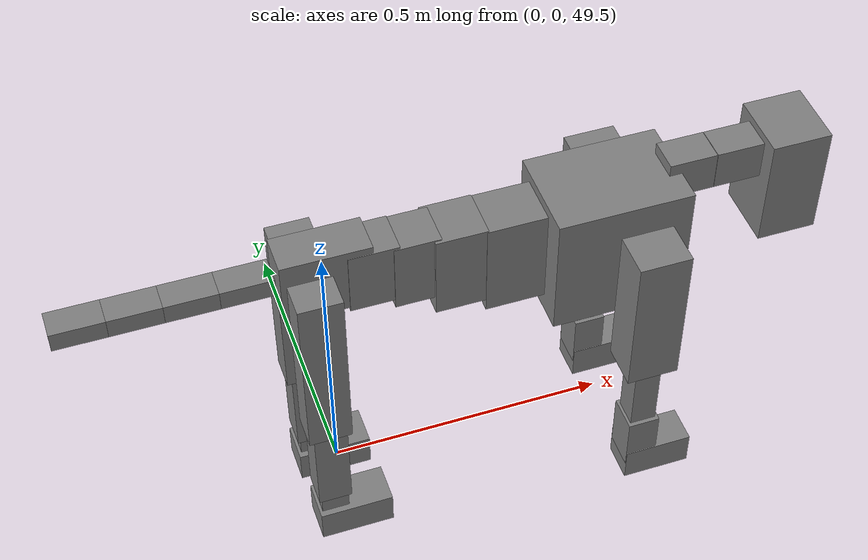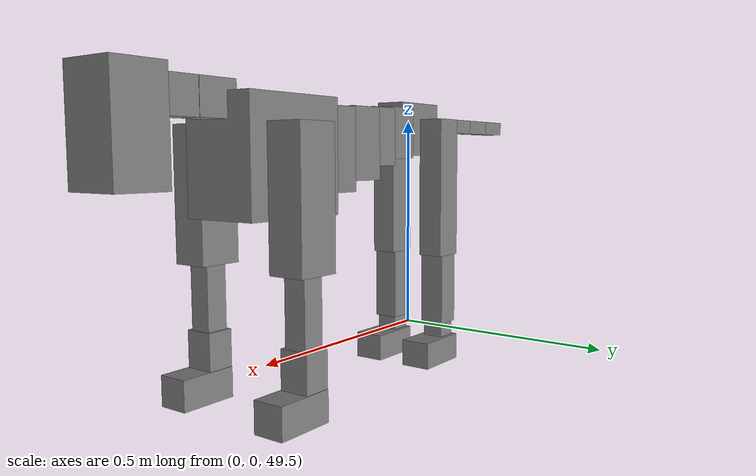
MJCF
<mujoco model="dog">

    <default>
        <joint armature="0.02" stiffness="1" damping="0.2" limited="true"/>
        <geom condim="3" friction="1 0.05 0.05" margin="0.01"/>
        <motor ctrllimited="true" ctrlrange="-1.0 1.0" forcelimited="true" gear="50"/>
    </default>

    <compiler inertiafromgeom="true" angle="radian"/>

    <option timestep="0.016" iterations="50" tolerance="1e-10" solver="Newton" jacobian="dense" cone="pyramidal"/>

    <size nconmax="20000" njmax="60000" nstack="5000000"/>
    <visual>
        <map force="0.1" zfar="30"/>
        <rgba haze="0.15 0.25 0.35 1"/>
        <quality shadowsize="2048"/>
        <global offwidth="800" offheight="800"/>
    </visual>

    <asset>
        <texture type="skybox" builtin="gradient" rgb1="0.3 0.5 0.7" rgb2="0 0 0" width="512" height="512"/>
        <texture name="texplane" type="2d" builtin="checker" rgb1=".2 .3 .4" rgb2=".1 0.15 0.2" width="512" height="512"
                 mark="cross" markrgb=".8 .8 .8"/>
        <texture name="texgeom" type="cube" builtin="flat" mark="cross" width="127" height="1278" rgb1="0.8 0.6 0.4"
                 rgb2="0.8 0.6 0.4" markrgb="1 1 1" random="0.01"/>

        <material name="matplane" reflectance="0.3" texture="texplane" texrepeat="1 1" texuniform="true"/>
        <material name="matgeom" texture="texgeom" texuniform="true" rgba="0.8 0.6 .4 1"/>
    </asset>

    <worldbody>
        <geom name="floor" pos="0 0 0" size="0 0 .25" type="plane" material="matplane" condim="3"/>

        <light directional="false" diffuse=".2 .2 .2" specular="0 0 0" pos="0 0 5" dir="0 0 -1" castshadow="false"/>
        <light mode="targetbodycom" target="torso" directional="false" diffuse=".8 .8 .8" specular="0.3 0.3 0.3"
               pos="0 0 4.0" dir="0 0 -1"/>

        <body name="root" pos="0 0 50">
            <freejoint name="root_1"/>
            <geom type="box" pos="0 0 -0.02" size="0.0774  0.0358  0.063" density="2030"/>

            <body name="spine1" pos="0.054 0 0">
                <joint name="spine1_y" axis="0 1 0" range="0 0.7" limited="true"/>
                <geom type="box" pos="0.02375 0 -0.03" size="0.04375  0.0375  0.05985" density="2030"/>

                <body name="spine2" pos="0.0612 0 0">
                    <joint name="spine2_y" axis="0 1 0" range="-0.15 0.15" limited="true"/>
                    <geom type="box" pos="0.03555  0  -0.04" size="0.04055  0.039  0.06615" density="2030"/>

                    <body name="spine3" pos="0.0730 0 0">
                        <joint name="spine3_y" axis="0 1 0" range="-0.15 0.15" limited="true"/>
                        <geom type="box" pos="0.03555  0  -0.057" size="0.04555  0.0445  0.081" density="2030"/>

                        <body name="spine4" pos="0.0780 0 0">
                            <joint name="spine4_y" axis="0 1 0" range="-0.15 0.15" limited="true"/>
                            <geom type="box" pos="0.05265  0  -0.07" size="0.05265  0.045  0.09135" density="2030"/>

                            <body name="torso" pos="0.1082 0 0">
                                <joint name="torso_y" axis="0 1 0" range="-0.15 0.15" limited="true"/>
                                <geom type="box" pos="0.11925  0  -0.085" size="0.11925  0.085  0.11745"
                                      density="2030"/>

                                <body name="neck1" pos="0.2160  0   0.0180">
                                    <joint name="neck1_y" axis="0 1 0" range="-1.2  -1" limited="true"/>
                                    <geom type="box" pos="0.0423  0  0" size="0.0423  0.03  0.036" density="2325"/>

                                    <body name="neck2" pos="0.0853  0  0">
                                        <joint name="neck2_y" axis="0 1 0" range="0.1  0" limited="true"/>
                                        <geom type="box" pos="0.0423  0  0" size="0.0423  0.03  0.036" density="2325"/>

                                        <body name="head" pos="0.0853  0  0">
                                            <joint name="head_y" axis="0 1 0" range="-0.3  -0.2" limited="true"/>
                                            <geom type="box" pos="0.0531  0  -0.055" size="0.0531  0.06  0.1044"
                                                  density="4030"/>

                                        </body>
                                    </body>
                                </body>

                                <body name="front_shoulder" pos="0.156  0   -0.0480">
                                    <joint name="front_shoulder_y" axis="0 1 0" range="-1 1.5" limited="true"/>
                                    <geom type="box" pos="0 0.13 -0.1130" size="0.0462  0.0395  0.1396" density="1158"/>
                                    <geom type="box" pos="0 -0.13 -0.1130" size="0.0462  0.0395  0.1396"
                                          density="1158"/>

                                    <body name="front_elbow" pos="0  0  -0.2259">
                                        <joint name="front_elbow_y" axis="0 1 0" range="-2 0" limited="true"/>
                                        <geom type="box" pos="0 0.13 -0.0883" size="0.0237  0.0243  0.0883"
                                              density="1081"/>
                                        <geom type="box" pos="0 -0.13 -0.0883" size="0.0237  0.0243  0.0883"
                                              density="1081"/>

                                        <body name="front_wrist" pos="0  0  -0.1766">
                                            <joint name="front_wrist_y" axis="0 1 0" range="-0.2 0" limited="true"/>
                                            <geom type="box" pos="0 0.13 -0.0404" size="0.0288  0.0320  0.0536"
                                                  density="1664"/>
                                            <geom type="box" pos="0 -0.13 -0.0404" size="0.0288  0.0320  0.0536"
                                                  density="1664"/>

                                            <body name="front_finger_end" pos="0  0  -0.0808">
                                                <joint name="front_finger_y" axis="0 1 0" range="-0.4 1"
                                                       limited="true"/>
                                                <geom type="box" pos="0.0339  0.13  -0.0172"
                                                      size="0.0621  0.0339  0.0322" density="1515"/>
                                                <geom type="box" pos="0.0339  -0.13  -0.0172"
                                                      size="0.0621  0.0339  0.0322" density="1515"/>

                                            </body>

                                        </body>
                                    </body>
                                </body>

                            </body>
                        </body>
                    </body>
                </body>
            </body>

            <body name="back_hip" pos="-0.03 0 -0.018">
                <joint name="back_hip_y" axis="0 1 0" range="-1.5 0.3" limited="true"/>
                <geom type="box" pos="0 0.07 -0.1434" size="0.0382  0.0299  0.1662" density="1154"/>
                <geom type="box" pos="0 -0.07 -0.1434" size="0.0382  0.0299  0.1662" density="1154"/>

                <body name="back_knee" pos="0  0  -0.2867">
                    <joint name="back_knee_y" axis="0 1 0" range="0 2.8" limited="true"/>
                    <geom type="box" pos="0 0.07 -0.0879" size="0.0298  0.0294  0.1035" density="1227"/>
                    <geom type="box" pos="0 -0.07 -0.0879" size="0.0298  0.0294  0.1035" density="1227"/>

                    <body name="back_ankle" pos="0  0  -0.1758">
                        <joint name="back_ankle_y" axis="0 1 0" range="-2.2 0" limited="true"/>
                        <geom type="box" pos="0 0.07 -0.0323" size="0.0248  0.0248  0.0435" density="1284"/>
                        <geom type="box" pos="0 -0.07 -0.0323" size="0.0248  0.0248  0.0435" density="1284"/>

                        <body name="back_toe_end" pos="0  0  -0.0645">
                            <joint name="back_toe_y" axis="0 1 0" range="-0.4 1" limited="true"/>
                            <geom type="box" pos="0.0362  0.07  -0.0161" size="0.0664  0.0362  0.0311" density="1515"/>
                            <geom type="box" pos="0.0362  -0.07  -0.0161" size="0.0664  0.0362  0.0311" density="1515"/>

                        </body>
                    </body>
                </body>
            </body>

            <body name="tail1" pos="-0.074 0 -0.006">
                <joint name="tail1_y" axis="0 1 0" range="-0.2 0.2" limited="true"/>
                <geom type="box" pos="-0.0536  0  0" size="0.045  0.025  0.0175" density="1587"/>

                <body name="tail2" pos="-0.09 0 0">
                    <joint name="tail2_y" axis="0 1 0" range="-0.2 0.2" limited="true"/>
                    <geom type="box" pos="-0.0536  0  0" size="0.045  0.025  0.0175" density="1587"/>

                    <body name="tail3" pos="-0.09 0 0">
                        <joint name="tail3_y" axis="0 1 0" range="-0.2 0.2" limited="true"/>
                        <geom type="box" pos="-0.0536  0  0" size="0.045  0.025  0.0175" density="1587"/>

                        <body name="tail4" pos="-0.09 0 0">
                            <joint name="tail4_y" axis="0 1 0" range="-0.2 0.2" limited="true"/>
                            <geom type="box" pos="-0.0536  0  0" size="0.045  0.025  0.0175" density="1587"/>

                        </body>
                    </body>
                </body>
            </body>
        </body>
    </worldbody>

    <actuator>
        <motor joint="spine1_y" forcerange="-150 150     "/>
        <motor joint="spine2_y" forcerange="-150 150     "/>
        <motor joint="spine3_y" forcerange="-150 150     "/>
        <motor joint="spine4_y" forcerange="-150 150     "/>
        <motor joint="torso_y" forcerange="-150 150     "/>
        <motor joint="neck1_y" forcerange="-100 100       "/>
        <motor joint="neck2_y" forcerange="-100 100       "/>
        <motor joint="head_y" forcerange="-150 150       "/>
        <motor joint="front_shoulder_y" forcerange="-164.66 198.80"/>
        <motor joint="front_elbow_y" forcerange="-109.29 167.26"/>
        <motor joint="front_wrist_y" forcerange="-116.22 139.41"/>
        <motor joint="front_finger_y" forcerange="-66.19 74.45"/>
        <motor joint="back_hip_y" forcerange="-204.54 394.61"/>
        <motor joint="back_knee_y" forcerange="-336.30 290.77"/>
        <motor joint="back_angle_y" forcerange="-122.53 174.72"/>
        <motor joint="back_toe_y" forcerange="-139.81 70.09"/>
        <motor joint="tail1_y" forcerange="-50 50     "/>
        <motor joint="tail2_y" forcerange="-50 50     "/>
        <motor joint="tail3_y" forcerange="-50 50     "/>
        <motor joint="tail4_y" forcerange="-50 50     "/>
    </actuator>
</mujoco>
